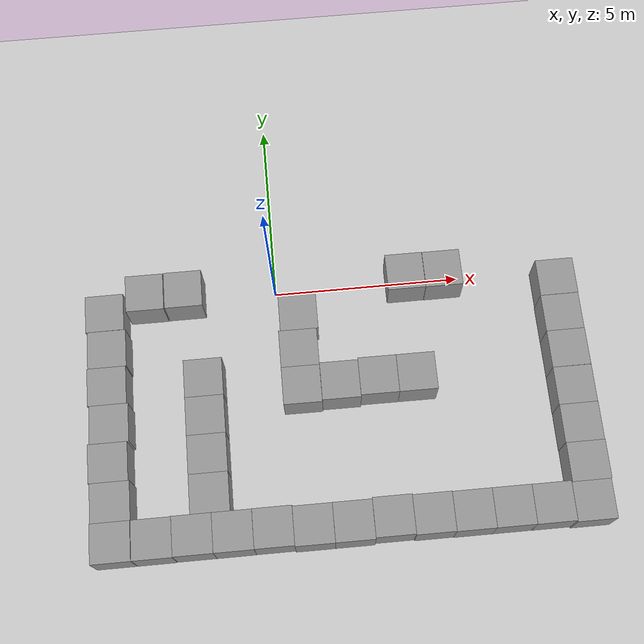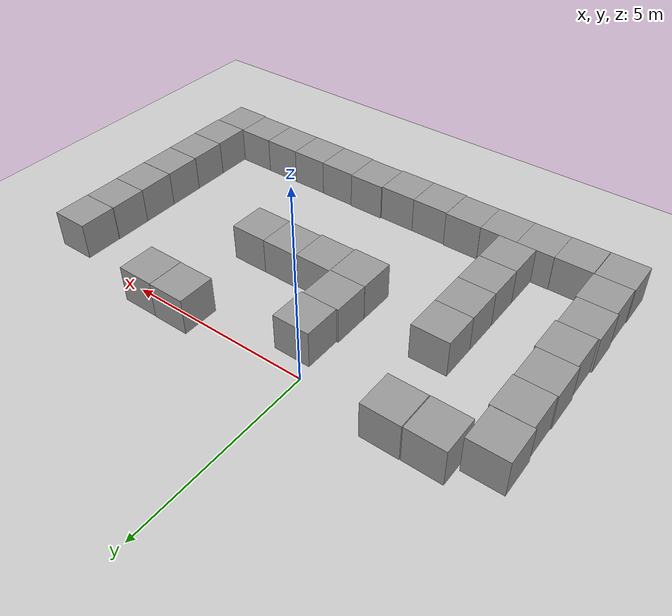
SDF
<sdf version="1.4">
 <world name="default">
  <model name="ground_plane">
   <static>1</static>
   <link name="link">
    <collision name="collision">
     <geometry><plane><normal>0 0 1</normal><size>100 100</size></plane></geometry>
     <surface><friction><ode><mu>100</mu><mu2>50</mu2></ode></friction></surface>
    </collision>
    <visual name="visual">
     <cast_shadows>0</cast_shadows>
     <geometry><plane><normal>0 0 1</normal><size>100 100</size></plane></geometry>
     <material>
      <script><uri>file://media/materials/scripts/gazebo.material</uri><name>Gazebo/Grey</name></script>
     </material>
    </visual>
    <velocity_decay><linear>0</linear><angular>0</angular></velocity_decay>
   </link>
  </model>
  <model name="unit_box_1">
   <pose>-3.44492 -0.008413 0.5 0 0 -0.002389</pose>
   <link name="link">
    <inertial>
     <mass>1</mass>
     <inertia><ixx>1</ixx><ixy>0</ixy><ixz>0</ixz><iyy>1</iyy><iyz>0</iyz><izz>1</izz></inertia>
    </inertial>
    <collision name="collision"><geometry><box><size>1 1 1</size></box></geometry></collision>
    <visual name="visual">
     <geometry><box><size>1 1 1</size></box></geometry>
     <material>
      <script><uri>file://media/materials/scripts/gazebo.material</uri><name>Gazebo/Grey</name></script>
     </material>
    </visual>
    <velocity_decay><linear>0</linear><angular>0</angular></velocity_decay>
   </link>
   <static>0</static>
  </model>
  <model name="unit_box_14">
   <pose>1.52886 -6.51674 0.5 0 0 -0.001265</pose>
   <link name="link">
    <inertial>
     <mass>1</mass>
     <inertia><ixx>1</ixx><ixy>0</ixy><ixz>0</ixz><iyy>1</iyy><iyz>0</iyz><izz>1</izz></inertia>
    </inertial>
    <collision name="collision"><geometry><box><size>1 1 1</size></box></geometry></collision>
    <visual name="visual">
     <geometry><box><size>1 1 1</size></box></geometry>
     <material>
      <script><uri>file://media/materials/scripts/gazebo.material</uri><name>Gazebo/Grey</name></script>
     </material>
    </visual>
    <velocity_decay><linear>0</linear><angular>0</angular></velocity_decay>
   </link>
   <static>0</static>
  </model>
  <model name="unit_box_15">
   <pose>0.528794 -6.51658 0.5 0 -0 -0.001371</pose>
   <link name="link">
    <inertial>
     <mass>1</mass>
     <inertia><ixx>1</ixx><ixy>0</ixy><ixz>0</ixz><iyy>1</iyy><iyz>0</iyz><izz>1</izz></inertia>
    </inertial>
    <collision name="collision"><geometry><box><size>1 1 1</size></box></geometry></collision>
    <visual name="visual">
     <geometry><box><size>1 1 1</size></box></geometry>
     <material>
      <script><uri>file://media/materials/scripts/gazebo.material</uri><name>Gazebo/Grey</name></script>
     </material>
    </visual>
    <velocity_decay><linear>0</linear><angular>0</angular></velocity_decay>
   </link>
   <static>0</static>
  </model>
  <model name="unit_box_21">
   <pose>3.51966 -2.83839 0.5 0 0 -0.003512</pose>
   <link name="link">
    <inertial>
     <mass>1</mass>
     <inertia><ixx>1</ixx><ixy>0</ixy><ixz>0</ixz><iyy>1</iyy><iyz>0</iyz><izz>1</izz></inertia>
    </inertial>
    <collision name="collision"><geometry><box><size>1 1 1</size></box></geometry></collision>
    <visual name="visual">
     <geometry><box><size>1 1 1</size></box></geometry>
     <material>
      <script><uri>file://media/materials/scripts/gazebo.material</uri><name>Gazebo/Grey</name></script>
     </material>
    </visual>
    <velocity_decay><linear>0</linear><angular>0</angular></velocity_decay>
   </link>
   <static>0</static>
  </model>
  <model name="unit_box_26">
   <pose>0.577321 -0.913715 0.5 0 -0 -0.004917</pose>
   <link name="link">
    <inertial>
     <mass>1</mass>
     <inertia><ixx>1</ixx><ixy>0</ixy><ixz>0</ixz><iyy>1</iyy><iyz>0</iyz><izz>1</izz></inertia>
    </inertial>
    <collision name="collision"><geometry><box><size>1 1 1</size></box></geometry></collision>
    <visual name="visual">
     <geometry><box><size>1 1 1</size></box></geometry>
     <material>
      <script><uri>file://media/materials/scripts/gazebo.material</uri><name>Gazebo/Grey</name></script>
     </material>
    </visual>
    <velocity_decay><linear>0</linear><angular>0</angular></velocity_decay>
   </link>
   <static>0</static>
  </model>
  <model name="unit_box_28">
   <pose>-2.42472 0.000161 0.5 0 -0 -0.000101</pose>
   <link name="link">
    <inertial>
     <mass>1</mass>
     <inertia><ixx>1</ixx><ixy>0</ixy><ixz>0</ixz><iyy>1</iyy><iyz>0</iyz><izz>1</izz></inertia>
    </inertial>
    <collision name="collision"><geometry><box><size>1 1 1</size></box></geometry></collision>
    <visual name="visual">
     <geometry><box><size>1 1 1</size></box></geometry>
     <material>
      <script><uri>file://media/materials/scripts/gazebo.material</uri><name>Gazebo/Grey</name></script>
     </material>
    </visual>
    <velocity_decay><linear>0</linear><angular>0</angular></velocity_decay>
   </link>
   <static>0</static>
  </model>
  <model name="unit_box_33">
   <pose>4.52701 -0.02729 0.5 0 -0 0.001959</pose>
   <link name="link">
    <inertial>
     <mass>1</mass>
     <inertia><ixx>1</ixx><ixy>0</ixy><ixz>0</ixz><iyy>1</iyy><iyz>0</iyz><izz>1</izz></inertia>
    </inertial>
    <collision name="collision"><geometry><box><size>1 1 1</size></box></geometry></collision>
    <visual name="visual">
     <geometry><box><size>1 1 1</size></box></geometry>
     <material>
      <script><uri>file://media/materials/scripts/gazebo.material</uri><name>Gazebo/Grey</name></script>
     </material>
    </visual>
    <velocity_decay><linear>0</linear><angular>0</angular></velocity_decay>
   </link>
   <static>0</static>
  </model>
  <model name="unit_box_34">
   <pose>3.52279 -0.02245 0.5 0 -0 0.000775</pose>
   <link name="link">
    <inertial>
     <mass>1</mass>
     <inertia><ixx>1</ixx><ixy>0</ixy><ixz>0</ixz><iyy>1</iyy><iyz>0</iyz><izz>1</izz></inertia>
    </inertial>
    <collision name="collision"><geometry><box><size>1 1 1</size></box></geometry></collision>
    <visual name="visual">
     <geometry><box><size>1 1 1</size></box></geometry>
     <material>
      <script><uri>file://media/materials/scripts/gazebo.material</uri><name>Gazebo/Grey</name></script>
     </material>
    </visual>
    <velocity_decay><linear>0</linear><angular>0</angular></velocity_decay>
   </link>
   <static>0</static>
  </model>
  <model name="unit_box_36">
   <pose>0.523489 -1.91349 0.5 0 -0 -0.004956</pose>
   <link name="link">
    <inertial>
     <mass>1</mass>
     <inertia><ixx>1</ixx><ixy>0</ixy><ixz>0</ixz><iyy>1</iyy><iyz>0</iyz><izz>1</izz></inertia>
    </inertial>
    <collision name="collision"><geometry><box><size>1 1 1</size></box></geometry></collision>
    <visual name="visual">
     <geometry><box><size>1 1 1</size></box></geometry>
     <material>
      <script><uri>file://media/materials/scripts/gazebo.material</uri><name>Gazebo/Grey</name></script>
     </material>
    </visual>
    <velocity_decay><linear>0</linear><angular>0</angular></velocity_decay>
   </link>
   <static>0</static>
  </model>
  <model name="unit_box_37">
   <pose>0.517461 -2.91348 0.5 0 -0 -0.004947</pose>
   <link name="link">
    <inertial>
     <mass>1</mass>
     <inertia><ixx>1</ixx><ixy>0</ixy><ixz>0</ixz><iyy>1</iyy><iyz>0</iyz><izz>1</izz></inertia>
    </inertial>
    <collision name="collision"><geometry><box><size>1 1 1</size></box></geometry></collision>
    <visual name="visual">
     <geometry><box><size>1 1 1</size></box></geometry>
     <material>
      <script><uri>file://media/materials/scripts/gazebo.material</uri><name>Gazebo/Grey</name></script>
     </material>
    </visual>
    <velocity_decay><linear>0</linear><angular>0</angular></velocity_decay>
   </link>
   <static>0</static>
  </model>
  <model name="unit_box_39">
   <pose>2.51961 -2.83525 0.5 0 0 -0.003565</pose>
   <link name="link">
    <inertial>
     <mass>1</mass>
     <inertia><ixx>1</ixx><ixy>0</ixy><ixz>0</ixz><iyy>1</iyy><iyz>0</iyz><izz>1</izz></inertia>
    </inertial>
    <collision name="collision"><geometry><box><size>1 1 1</size></box></geometry></collision>
    <visual name="visual">
     <geometry><box><size>1 1 1</size></box></geometry>
     <material>
      <script><uri>file://media/materials/scripts/gazebo.material</uri><name>Gazebo/Grey</name></script>
     </material>
    </visual>
    <velocity_decay><linear>0</linear><angular>0</angular></velocity_decay>
   </link>
   <static>0</static>
  </model>
  <model name="unit_box_43">
   <pose>2.52939 -6.48389 0.5 0 -0 -0.00035</pose>
   <link name="link">
    <inertial>
     <mass>1</mass>
     <inertia><ixx>1</ixx><ixy>0</ixy><ixz>0</ixz><iyy>1</iyy><iyz>0</iyz><izz>1</izz></inertia>
    </inertial>
    <collision name="collision"><geometry><box><size>1 1 1</size></box></geometry></collision>
    <visual name="visual">
     <geometry><box><size>1 1 1</size></box></geometry>
     <material>
      <script><uri>file://media/materials/scripts/gazebo.material</uri><name>Gazebo/Grey</name></script>
     </material>
    </visual>
    <velocity_decay><linear>0</linear><angular>0</angular></velocity_decay>
   </link>
   <static>0</static>
  </model>
  <model name="unit_box_44">
   <pose>3.52938 -6.50736 0.5 -0 -0 -0.00035</pose>
   <link name="link">
    <inertial>
     <mass>1</mass>
     <inertia><ixx>1</ixx><ixy>0</ixy><ixz>0</ixz><iyy>1</iyy><iyz>0</iyz><izz>1</izz></inertia>
    </inertial>
    <collision name="collision"><geometry><box><size>1 1 1</size></box></geometry></collision>
    <visual name="visual">
     <geometry><box><size>1 1 1</size></box></geometry>
     <material>
      <script><uri>file://media/materials/scripts/gazebo.material</uri><name>Gazebo/Grey</name></script>
     </material>
    </visual>
    <velocity_decay><linear>0</linear><angular>0</angular></velocity_decay>
   </link>
   <static>0</static>
  </model>
  <model name="unit_box_45">
   <pose>4.52938 -6.51678 0.5 -0 -0 -0.000351</pose>
   <link name="link">
    <inertial>
     <mass>1</mass>
     <inertia><ixx>1</ixx><ixy>0</ixy><ixz>0</ixz><iyy>1</iyy><iyz>0</iyz><izz>1</izz></inertia>
    </inertial>
    <collision name="collision"><geometry><box><size>1 1 1</size></box></geometry></collision>
    <visual name="visual">
     <geometry><box><size>1 1 1</size></box></geometry>
     <material>
      <script><uri>file://media/materials/scripts/gazebo.material</uri><name>Gazebo/Grey</name></script>
     </material>
    </visual>
    <velocity_decay><linear>0</linear><angular>0</angular></velocity_decay>
   </link>
   <static>0</static>
  </model>
  <model name="unit_box_46">
   <pose>5.52939 -6.51774 0.5 0 -0 -0.000364</pose>
   <link name="link">
    <inertial>
     <mass>1</mass>
     <inertia><ixx>1</ixx><ixy>0</ixy><ixz>0</ixz><iyy>1</iyy><iyz>0</iyz><izz>1</izz></inertia>
    </inertial>
    <collision name="collision"><geometry><box><size>1 1 1</size></box></geometry></collision>
    <visual name="visual">
     <geometry><box><size>1 1 1</size></box></geometry>
     <material>
      <script><uri>file://media/materials/scripts/gazebo.material</uri><name>Gazebo/Grey</name></script>
     </material>
    </visual>
    <velocity_decay><linear>0</linear><angular>0</angular></velocity_decay>
   </link>
   <static>0</static>
  </model>
  <model name="unit_box_47">
   <pose>6.52939 -6.52193 0.5 0 0 -0.000363</pose>
   <link name="link">
    <inertial>
     <mass>1</mass>
     <inertia><ixx>1</ixx><ixy>0</ixy><ixz>0</ixz><iyy>1</iyy><iyz>0</iyz><izz>1</izz></inertia>
    </inertial>
    <collision name="collision"><geometry><box><size>1 1 1</size></box></geometry></collision>
    <visual name="visual">
     <geometry><box><size>1 1 1</size></box></geometry>
     <material>
      <script><uri>file://media/materials/scripts/gazebo.material</uri><name>Gazebo/Grey</name></script>
     </material>
    </visual>
    <velocity_decay><linear>0</linear><angular>0</angular></velocity_decay>
   </link>
   <static>0</static>
  </model>
  <model name="unit_box_48">
   <pose>7.52966 -6.55381 0.5 0 -0 0.000208</pose>
   <link name="link">
    <inertial>
     <mass>1</mass>
     <inertia><ixx>1</ixx><ixy>0</ixy><ixz>0</ixz><iyy>1</iyy><iyz>0</iyz><izz>1</izz></inertia>
    </inertial>
    <collision name="collision"><geometry><box><size>1 1 1</size></box></geometry></collision>
    <visual name="visual">
     <geometry><box><size>1 1 1</size></box></geometry>
     <material>
      <script><uri>file://media/materials/scripts/gazebo.material</uri><name>Gazebo/Grey</name></script>
     </material>
    </visual>
    <velocity_decay><linear>0</linear><angular>0</angular></velocity_decay>
   </link>
   <static>0</static>
  </model>
  <model name="unit_box_49">
   <pose>7.54975 -5.5538 0.5 0 -0 0.000215</pose>
   <link name="link">
    <inertial>
     <mass>1</mass>
     <inertia><ixx>1</ixx><ixy>0</ixy><ixz>0</ixz><iyy>1</iyy><iyz>0</iyz><izz>1</izz></inertia>
    </inertial>
    <collision name="collision"><geometry><box><size>1 1 1</size></box></geometry></collision>
    <visual name="visual">
     <geometry><box><size>1 1 1</size></box></geometry>
     <material>
      <script><uri>file://media/materials/scripts/gazebo.material</uri><name>Gazebo/Grey</name></script>
     </material>
    </visual>
    <velocity_decay><linear>0</linear><angular>0</angular></velocity_decay>
   </link>
   <static>0</static>
  </model>
  <model name="unit_box_50">
   <pose>7.54014 -4.5538 0.5 0 -0 0.000225</pose>
   <link name="link">
    <inertial>
     <mass>1</mass>
     <inertia><ixx>1</ixx><ixy>0</ixy><ixz>0</ixz><iyy>1</iyy><iyz>0</iyz><izz>1</izz></inertia>
    </inertial>
    <collision name="collision"><geometry><box><size>1 1 1</size></box></geometry></collision>
    <visual name="visual">
     <geometry><box><size>1 1 1</size></box></geometry>
     <material>
      <script><uri>file://media/materials/scripts/gazebo.material</uri><name>Gazebo/Grey</name></script>
     </material>
    </visual>
    <velocity_decay><linear>0</linear><angular>0</angular></velocity_decay>
   </link>
   <static>0</static>
  </model>
  <model name="unit_box_51">
   <pose>7.53422 -3.55354 0.5 0 -0 0.000751</pose>
   <link name="link">
    <inertial>
     <mass>1</mass>
     <inertia><ixx>1</ixx><ixy>0</ixy><ixz>0</ixz><iyy>1</iyy><iyz>0</iyz><izz>1</izz></inertia>
    </inertial>
    <collision name="collision"><geometry><box><size>1 1 1</size></box></geometry></collision>
    <visual name="visual">
     <geometry><box><size>1 1 1</size></box></geometry>
     <material>
      <script><uri>file://media/materials/scripts/gazebo.material</uri><name>Gazebo/Grey</name></script>
     </material>
    </visual>
    <velocity_decay><linear>0</linear><angular>0</angular></velocity_decay>
   </link>
   <static>0</static>
  </model>
  <model name="unit_box_52">
   <pose>7.53055 -2.5518 0.5 0 -0 0.004252</pose>
   <link name="link">
    <inertial>
     <mass>1</mass>
     <inertia><ixx>1</ixx><ixy>0</ixy><ixz>0</ixz><iyy>1</iyy><iyz>0</iyz><izz>1</izz></inertia>
    </inertial>
    <collision name="collision"><geometry><box><size>1 1 1</size></box></geometry></collision>
    <visual name="visual">
     <geometry><box><size>1 1 1</size></box></geometry>
     <material>
      <script><uri>file://media/materials/scripts/gazebo.material</uri><name>Gazebo/Grey</name></script>
     </material>
    </visual>
    <velocity_decay><linear>0</linear><angular>0</angular></velocity_decay>
   </link>
   <static>0</static>
  </model>
  <model name="unit_box_53">
   <pose>7.52272 -1.55182 0.5 0 -0 0.004252</pose>
   <link name="link">
    <inertial>
     <mass>1</mass>
     <inertia><ixx>1</ixx><ixy>0</ixy><ixz>0</ixz><iyy>1</iyy><iyz>0</iyz><izz>1</izz></inertia>
    </inertial>
    <collision name="collision"><geometry><box><size>1 1 1</size></box></geometry></collision>
    <visual name="visual">
     <geometry><box><size>1 1 1</size></box></geometry>
     <material>
      <script><uri>file://media/materials/scripts/gazebo.material</uri><name>Gazebo/Grey</name></script>
     </material>
    </visual>
    <velocity_decay><linear>0</linear><angular>0</angular></velocity_decay>
   </link>
   <static>0</static>
  </model>
  <model name="unit_box_54">
   <pose>7.52817 -0.550549 0.5 0 -0 0.001742</pose>
   <link name="link">
    <inertial>
     <mass>1</mass>
     <inertia><ixx>1</ixx><ixy>0</ixy><ixz>0</ixz><iyy>1</iyy><iyz>0</iyz><izz>1</izz></inertia>
    </inertial>
    <collision name="collision"><geometry><box><size>1 1 1</size></box></geometry></collision>
    <visual name="visual">
     <geometry><box><size>1 1 1</size></box></geometry>
     <material>
      <script><uri>file://media/materials/scripts/gazebo.material</uri><name>Gazebo/Grey</name></script>
     </material>
    </visual>
    <velocity_decay><linear>0</linear><angular>0</angular></velocity_decay>
   </link>
   <static>0</static>
  </model>
  <model name="unit_box_55">
   <pose>-0.471435 -6.48828 0.5 0 0 -0.000862</pose>
   <link name="link">
    <inertial>
     <mass>1</mass>
     <inertia><ixx>1</ixx><ixy>0</ixy><ixz>0</ixz><iyy>1</iyy><iyz>0</iyz><izz>1</izz></inertia>
    </inertial>
    <collision name="collision"><geometry><box><size>1 1 1</size></box></geometry></collision>
    <visual name="visual">
     <geometry><box><size>1 1 1</size></box></geometry>
     <material>
      <script><uri>file://media/materials/scripts/gazebo.material</uri><name>Gazebo/Grey</name></script>
     </material>
    </visual>
    <velocity_decay><linear>0</linear><angular>0</angular></velocity_decay>
   </link>
   <static>0</static>
  </model>
  <model name="unit_box_56">
   <pose>-1.47172 -6.49195 0.5 0 -0 -0.000328</pose>
   <link name="link">
    <inertial>
     <mass>1</mass>
     <inertia><ixx>1</ixx><ixy>0</ixy><ixz>0</ixz><iyy>1</iyy><iyz>0</iyz><izz>1</izz></inertia>
    </inertial>
    <collision name="collision"><geometry><box><size>1 1 1</size></box></geometry></collision>
    <visual name="visual">
     <geometry><box><size>1 1 1</size></box></geometry>
     <material>
      <script><uri>file://media/materials/scripts/gazebo.material</uri><name>Gazebo/Grey</name></script>
     </material>
    </visual>
    <velocity_decay><linear>0</linear><angular>0</angular></velocity_decay>
   </link>
   <static>0</static>
  </model>
  <model name="unit_box_57">
   <pose>-2.472 -6.49111 0.5 -0 -0 -0.000888</pose>
   <link name="link">
    <inertial>
     <mass>1</mass>
     <inertia><ixx>1</ixx><ixy>0</ixy><ixz>0</ixz><iyy>1</iyy><iyz>0</iyz><izz>1</izz></inertia>
    </inertial>
    <collision name="collision"><geometry><box><size>1 1 1</size></box></geometry></collision>
    <visual name="visual">
     <geometry><box><size>1 1 1</size></box></geometry>
     <material>
      <script><uri>file://media/materials/scripts/gazebo.material</uri><name>Gazebo/Grey</name></script>
     </material>
    </visual>
    <velocity_decay><linear>0</linear><angular>0</angular></velocity_decay>
   </link>
   <static>0</static>
  </model>
  <model name="unit_box_58">
   <pose>-3.47246 -6.49917 0.5 0 -0 8e-06</pose>
   <link name="link">
    <inertial>
     <mass>1</mass>
     <inertia><ixx>1</ixx><ixy>0</ixy><ixz>0</ixz><iyy>1</iyy><iyz>0</iyz><izz>1</izz></inertia>
    </inertial>
    <collision name="collision"><geometry><box><size>1 1 1</size></box></geometry></collision>
    <visual name="visual">
     <geometry><box><size>1 1 1</size></box></geometry>
     <material>
      <script><uri>file://media/materials/scripts/gazebo.material</uri><name>Gazebo/Grey</name></script>
     </material>
    </visual>
    <velocity_decay><linear>0</linear><angular>0</angular></velocity_decay>
   </link>
   <static>0</static>
  </model>
  <model name="unit_box_59">
   <pose>-4.48366 -6.49957 0.5 0 -0 0.000635</pose>
   <link name="link">
    <inertial>
     <mass>1</mass>
     <inertia><ixx>1</ixx><ixy>0</ixy><ixz>0</ixz><iyy>1</iyy><iyz>0</iyz><izz>1</izz></inertia>
    </inertial>
    <collision name="collision"><geometry><box><size>1 1 1</size></box></geometry></collision>
    <visual name="visual">
     <geometry><box><size>1 1 1</size></box></geometry>
     <material>
      <script><uri>file://media/materials/scripts/gazebo.material</uri><name>Gazebo/Grey</name></script>
     </material>
    </visual>
    <velocity_decay><linear>0</linear><angular>0</angular></velocity_decay>
   </link>
   <static>0</static>
  </model>
  <model name="unit_box_60">
   <pose>-4.46742 -5.49952 0.5 0 -0 0.000705</pose>
   <link name="link">
    <inertial>
     <mass>1</mass>
     <inertia><ixx>1</ixx><ixy>0</ixy><ixz>0</ixz><iyy>1</iyy><iyz>0</iyz><izz>1</izz></inertia>
    </inertial>
    <collision name="collision"><geometry><box><size>1 1 1</size></box></geometry></collision>
    <visual name="visual">
     <geometry><box><size>1 1 1</size></box></geometry>
     <material>
      <script><uri>file://media/materials/scripts/gazebo.material</uri><name>Gazebo/Grey</name></script>
     </material>
    </visual>
    <velocity_decay><linear>0</linear><angular>0</angular></velocity_decay>
   </link>
   <static>0</static>
  </model>
  <model name="unit_box_61">
   <pose>-4.49675 -4.49949 0.5 0 -0 0.000802</pose>
   <link name="link">
    <inertial>
     <mass>1</mass>
     <inertia><ixx>1</ixx><ixy>0</ixy><ixz>0</ixz><iyy>1</iyy><iyz>0</iyz><izz>1</izz></inertia>
    </inertial>
    <collision name="collision"><geometry><box><size>1 1 1</size></box></geometry></collision>
    <visual name="visual">
     <geometry><box><size>1 1 1</size></box></geometry>
     <material>
      <script><uri>file://media/materials/scripts/gazebo.material</uri><name>Gazebo/Grey</name></script>
     </material>
    </visual>
    <velocity_decay><linear>0</linear><angular>0</angular></velocity_decay>
   </link>
   <static>0</static>
  </model>
  <model name="unit_box_62">
   <pose>-4.45118 -3.4994 0.5 0 -0 0.000893</pose>
   <link name="link">
    <inertial>
     <mass>1</mass>
     <inertia><ixx>1</ixx><ixy>0</ixy><ixz>0</ixz><iyy>1</iyy><iyz>0</iyz><izz>1</izz></inertia>
    </inertial>
    <collision name="collision"><geometry><box><size>1 1 1</size></box></geometry></collision>
    <visual name="visual">
     <geometry><box><size>1 1 1</size></box></geometry>
     <material>
      <script><uri>file://media/materials/scripts/gazebo.material</uri><name>Gazebo/Grey</name></script>
     </material>
    </visual>
    <velocity_decay><linear>0</linear><angular>0</angular></velocity_decay>
   </link>
   <static>0</static>
  </model>
  <model name="unit_box_63">
   <pose>-4.48656 -2.49942 0.5 0 -0 0.000892</pose>
   <link name="link">
    <inertial>
     <mass>1</mass>
     <inertia><ixx>1</ixx><ixy>0</ixy><ixz>0</ixz><iyy>1</iyy><iyz>0</iyz><izz>1</izz></inertia>
    </inertial>
    <collision name="collision"><geometry><box><size>1 1 1</size></box></geometry></collision>
    <visual name="visual">
     <geometry><box><size>1 1 1</size></box></geometry>
     <material>
      <script><uri>file://media/materials/scripts/gazebo.material</uri><name>Gazebo/Grey</name></script>
     </material>
    </visual>
    <velocity_decay><linear>0</linear><angular>0</angular></velocity_decay>
   </link>
   <static>0</static>
  </model>
  <model name="unit_box_64">
   <pose>-4.46703 -1.49939 0.5 0 -0 0.000885</pose>
   <link name="link">
    <inertial>
     <mass>1</mass>
     <inertia><ixx>1</ixx><ixy>0</ixy><ixz>0</ixz><iyy>1</iyy><iyz>0</iyz><izz>1</izz></inertia>
    </inertial>
    <collision name="collision"><geometry><box><size>1 1 1</size></box></geometry></collision>
    <visual name="visual">
     <geometry><box><size>1 1 1</size></box></geometry>
     <material>
      <script><uri>file://media/materials/scripts/gazebo.material</uri><name>Gazebo/Grey</name></script>
     </material>
    </visual>
    <velocity_decay><linear>0</linear><angular>0</angular></velocity_decay>
   </link>
   <static>0</static>
  </model>
  <model name="unit_box_65">
   <pose>-4.50684 -0.49758 0.5 0 -0 0.004878</pose>
   <link name="link">
    <inertial>
     <mass>1</mass>
     <inertia><ixx>1</ixx><ixy>0</ixy><ixz>0</ixz><iyy>1</iyy><iyz>0</iyz><izz>1</izz></inertia>
    </inertial>
    <collision name="collision"><geometry><box><size>1 1 1</size></box></geometry></collision>
    <visual name="visual">
     <geometry><box><size>1 1 1</size></box></geometry>
     <material>
      <script><uri>file://media/materials/scripts/gazebo.material</uri><name>Gazebo/Grey</name></script>
     </material>
    </visual>
    <velocity_decay><linear>0</linear><angular>0</angular></velocity_decay>
   </link>
   <static>0</static>
  </model>
  <model name="unit_box_75">
   <pose>1.51934 -2.87822 0.5 0 0 -0.003788</pose>
   <link name="link">
    <inertial>
     <mass>1</mass>
     <inertia><ixx>1</ixx><ixy>0</ixy><ixz>0</ixz><iyy>1</iyy><iyz>0</iyz><izz>1</izz></inertia>
    </inertial>
    <collision name="collision"><geometry><box><size>1 1 1</size></box></geometry></collision>
    <visual name="visual">
     <geometry><box><size>1 1 1</size></box></geometry>
     <material>
      <script><uri>file://media/materials/scripts/gazebo.material</uri><name>Gazebo/Grey</name></script>
     </material>
    </visual>
    <velocity_decay><linear>0</linear><angular>0</angular></velocity_decay>
   </link>
   <static>0</static>
  </model>
  <model name="unit_box_98">
   <pose>-1.99954 -5.49151 0.5 0 -0 -0.000857</pose>
   <link name="link">
    <inertial>
     <mass>1</mass>
     <inertia><ixx>1</ixx><ixy>0</ixy><ixz>0</ixz><iyy>1</iyy><iyz>0</iyz><izz>1</izz></inertia>
    </inertial>
    <collision name="collision"><geometry><box><size>1 1 1</size></box></geometry></collision>
    <visual name="visual">
     <geometry><box><size>1 1 1</size></box></geometry>
     <material>
      <script><uri>file://media/materials/scripts/gazebo.material</uri><name>Gazebo/Grey</name></script>
     </material>
    </visual>
    <velocity_decay><linear>0</linear><angular>0</angular></velocity_decay>
   </link>
   <static>0</static>
  </model>
  <model name="unit_box_99">
   <pose>-1.9999 -4.49111 0.5 0 0 -6.5e-05</pose>
   <link name="link">
    <inertial>
     <mass>1</mass>
     <inertia><ixx>1</ixx><ixy>0</ixy><ixz>0</ixz><iyy>1</iyy><iyz>0</iyz><izz>1</izz></inertia>
    </inertial>
    <collision name="collision"><geometry><box><size>1 1 1</size></box></geometry></collision>
    <visual name="visual">
     <geometry><box><size>1 1 1</size></box></geometry>
     <material>
      <script><uri>file://media/materials/scripts/gazebo.material</uri><name>Gazebo/Grey</name></script>
     </material>
    </visual>
    <velocity_decay><linear>0</linear><angular>0</angular></velocity_decay>
   </link>
   <static>0</static>
  </model>
  <model name="unit_box_100">
   <pose>-1.99995 -3.49109 0.5 0 0 -2.4e-05</pose>
   <link name="link">
    <inertial>
     <mass>1</mass>
     <inertia><ixx>1</ixx><ixy>0</ixy><ixz>0</ixz><iyy>1</iyy><iyz>0</iyz><izz>1</izz></inertia>
    </inertial>
    <collision name="collision"><geometry><box><size>1 1 1</size></box></geometry></collision>
    <visual name="visual">
     <geometry><box><size>1 1 1</size></box></geometry>
     <material>
      <script><uri>file://media/materials/scripts/gazebo.material</uri><name>Gazebo/Grey</name></script>
     </material>
    </visual>
    <velocity_decay><linear>0</linear><angular>0</angular></velocity_decay>
   </link>
   <static>0</static>
  </model>
  <model name="unit_box_101">
   <pose>-1.99992 -2.49098 0.5 0 0 -0.000204</pose>
   <link name="link">
    <inertial>
     <mass>1</mass>
     <inertia><ixx>1</ixx><ixy>0</ixy><ixz>0</ixz><iyy>1</iyy><iyz>0</iyz><izz>1</izz></inertia>
    </inertial>
    <collision name="collision"><geometry><box><size>1 1 1</size></box></geometry></collision>
    <visual name="visual">
     <geometry><box><size>1 1 1</size></box></geometry>
     <material>
      <script><uri>file://media/materials/scripts/gazebo.material</uri><name>Gazebo/Grey</name></script>
     </material>
    </visual>
    <velocity_decay><linear>0</linear><angular>0</angular></velocity_decay>
   </link>
   <static>0</static>
  </model>
 </world>
</sdf>
